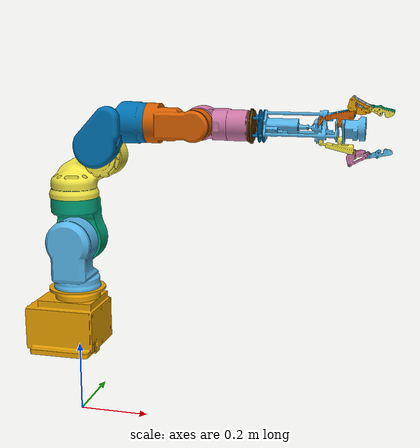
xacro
<?xml version="1.0"?>
<robot name="sia5" xmlns:xacro="http://ros.org/wiki/xacro">

  <!-- File Include -->
  <xacro:include filename="$(find motoman_description)/robots/sia5/sia5_basic.urdf.xacro"/>
  <xacro:include filename="$(find dhand_description)/robots/dhand_adapted.urdf.xacro"/>

  <xacro:add_world>
    <origin xyz="0 0 0.2" rpy="0 0 0"/>
  </xacro:add_world>

  <!-- Joint -->
  <joint name="dhand_adapter_joint" type="fixed">
	<origin xyz="0 0 0" rpy="${M_PI} 0 0"/>
	<parent link="tool0"/>
	<child link="dhand_adapter_link"/>
  </joint>

</robot>

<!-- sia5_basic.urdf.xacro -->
<robot name="sia5" xmlns:xacro="http://ros.org/wiki/xacro">
  <!-- File Include -->
  <xacro:include filename="$(find motoman_description)/urdf/common.xacro" />
  <xacro:include filename="$(find motoman_description)/urdf/materials.xacro"/>
  <xacro:include filename="$(find motoman_description)/urdf/sia5/body.urdf.xacro" />
  <xacro:include filename="$(find motoman_description)/urdf/sia5/body.transmission.xacro"/>
  <xacro:include filename="$(find motoman_description)/urdf/sia5/body.gazebo.xacro"/>

  <!-- Mass -->
  <xacro:property name="sum_mass" value="30.0" />
  <!-- about mass rate -->
  <xacro:property name="table_mass" value="40.0" />
  <xacro:property name="base_rate" value="8.5" />
  <xacro:property name="s_rate" value="7.7" />
  <xacro:property name="l_rate" value="7.0" />
  <xacro:property name="e_rate" value="1.2" />
  <xacro:property name="u_rate" value="1.0" />
  <xacro:property name="r_rate" value="0.9" />
  <xacro:property name="b_rate" value="0.8" />
  <xacro:property name="t_rate" value="0.5" />
  <!-- Hard ware limits -->
  <!-- Range limits -->
  <xacro:property name="s_axis_upper_limit" value="${179.99999*M_PI/180.0*0.95}"/>
  <xacro:property name="s_axis_lower_limit" value="-${s_axis_upper_limit}"/>
  <xacro:property name="l_axis_upper_limit" value="${110.0*M_PI/180.0*0.95}"/>
  <xacro:property name="l_axis_lower_limit" value="-${l_axis_upper_limit}"/>
  <xacro:property name="e_axis_upper_limit" value="${170.0*M_PI/180.0*0.95}"/>
  <xacro:property name="e_axis_lower_limit" value="-${e_axis_upper_limit}"/>
  <xacro:property name="u_axis_upper_limit" value="${115.0*M_PI/180.0*0.95}"/>
  <xacro:property name="u_axis_lower_limit" value="${-90.0*M_PI/180.0*0.95}"/>
  <xacro:property name="r_axis_upper_limit" value="${179.99999*M_PI/180.0*0.95}"/>
  <xacro:property name="r_axis_lower_limit" value="-${r_axis_upper_limit}"/>
  <xacro:property name="b_axis_upper_limit" value="${110.0*M_PI/180.0*0.95}"/>
  <xacro:property name="b_axis_lower_limit" value="-${b_axis_upper_limit}"/>
  <xacro:property name="t_axis_upper_limit" value="${179.99999*M_PI/180.0*0.95}"/>
  <xacro:property name="t_axis_lower_limit" value="-${t_axis_upper_limit}"/>
  <!-- Velocity limits -->
  <xacro:property name="s_axis_velocity_limit" value="${200.0*M_PI/180.0*0.95}"/>
  <xacro:property name="l_axis_velocity_limit" value="${200.0*M_PI/180.0*0.95}"/>
  <xacro:property name="e_axis_velocity_limit" value="${200.0*M_PI/180.0*0.95}"/>
  <xacro:property name="u_axis_velocity_limit" value="${200.0*M_PI/180.0*0.95}"/>
  <xacro:property name="r_axis_velocity_limit" value="${200.0*M_PI/180.0*0.95}"/>
  <xacro:property name="b_axis_velocity_limit" value="${230.0*M_PI/180.0*0.95}"/>
  <xacro:property name="t_axis_velocity_limit" value="${350.0*M_PI/180.0*0.95}"/>

  <!-- Add macro -->
  <xacro:macro name="add_world" params="*origin">
    <link name="world"/>
    <joint name="world" type="fixed">
      <xacro:insert_block name="origin"/>
      <parent link="world"/>
      <child link="base_link"/>
    </joint>
  </xacro:macro>

  <!-- link -->
  <xacro:link_box_v0 name="base_link" mass="${base_rate/sum_rate*sum_mass}"
                     width="0.1665" depth="0.1976" height="0.1465"
                     ox="-0.025918" oy="-0.000376" oz="0.076105" oroll="0" opitch="0" oyaw="0"/>
  <xacro:link_cylinder_plus_box_v0 name="link_s"
                                   ox="0" oy="0" oz="0" oroll="0" opitch="0" oyaw="0"
                                   mass_cyl="${s_rate/sum_rate*sum_mass*0.2}"
                                   radius_cyl="0.066" height_cyl="0.031"
                                   mass_box="${s_rate/sum_rate*sum_mass*0.8}"
                                   width_box="0.0851" depth_box="0.1" height_box="0.1823"/>
  <xacro:link_cylinder_plus_box_v0 name="link_l"
                                   ox="0" oy="-0.006" oz="0.15" oroll="${M_PI}" opitch="0" oyaw="0"
                                   mass_cyl="${l_rate/sum_rate*sum_mass*0.4}"
                                   radius_cyl="0.066" height_cyl="0.073"
                                   mass_box="${l_rate/sum_rate*sum_mass*0.6}"
                                   width_box="0.073" depth_box="0.1089" height_box="0.149"/>
  <xacro:link_cylinder_plus_box_v0 name="link_e"
                                   ox="0" oy="0" oz="0" oroll="0" opitch="0" oyaw="${-M_PI/2}"
                                   mass_cyl="${e_rate/sum_rate*sum_mass*0.56}"
                                   radius_cyl="0.0685" height_cyl="0.0661"
                                   mass_box="${e_rate/sum_rate*sum_mass*0.44}"
                                   width_box="0.1234" depth_box="0.063" height_box="0.1176"/>
  <xacro:link_cylinder_plus_box_v0 name="link_u"
                                   ox="0.008" oy="-0.06" oz="-0.131" oroll="${-M_PI}" opitch="${M_PI/2}" oyaw="0"
                                   mass_cyl="${u_rate/sum_rate*sum_mass*0.48}"
                                   radius_cyl="0.055" height_cyl="0.0698"
                                   mass_box="${u_rate/sum_rate*sum_mass*0.52}"
                                   width_box="0.13174" depth_box="0.068" height_box="0.104"/>
  <xacro:link_cylinder_plus_box_v0 name="link_r"
                                     ox="0" oy="0" oz="0" oroll="0" opitch="0" oyaw="${-M_PI/2}"
                                     mass_cyl="${r_rate/sum_rate*sum_mass*0.25}"
                                     radius_cyl="0.0525" height_cyl="0.038"
                                     mass_box="${r_rate/sum_rate*sum_mass*0.75}"
                                     width_box="0.0645" depth_box="0.084" height_box="0.1425"/>
  <xacro:link_cylinder_plus_box_v0 name="link_b"
                                     ox="0" oy="0.0045" oz="0.1365" oroll="${M_PI/2}" opitch="${-M_PI/2}" oyaw="0"
                                     mass_cyl="${b_rate/sum_rate*sum_mass*0.55}"
                                     radius_cyl="0.04" height_cyl="0.0948"
                                     mass_box="${b_rate/sum_rate*sum_mass*0.45}"
                                     width_box="0.0676" depth_box="0.076" height_box="0.0627"/>
  <xacro:link_v1 name="link_t" mass="${t_rate/sum_rate*sum_mass}"
                   ixx="0.003" ixy="0" ixz="0"
                   iyy="0.003" iyz="0"
                   izz="0.001"/>
  <link name="tool0"/>

  <!-- joint -->
  <xacro:joint_v1 joint_name="joint_s"
                  parent_name="base_link" child_name="link_s"
                  ox="0" oy="0" oz="0.1765"
                  roll="0" pitch="0" yaw="0"
                  ax="0" ay="0" az="1"
                  el="30.0"
                  ll="${s_axis_lower_limit}" ul="${s_axis_upper_limit}"
                  vl="${s_axis_velocity_limit}"
                  skp="1" skv="1"
                  sll="${s_axis_lower_limit}" sul="${s_axis_upper_limit}"/>
  <xacro:joint_v1 joint_name="joint_l"
                  parent_name="link_s" child_name="link_l"
                  ox="0" oy="0.006" oz="0.136"
                  roll="0" pitch="0" yaw="0"
                  ax="0" ay="1" az="0"
                  el="30.0"
                  ll="${l_axis_lower_limit}" ul="${l_axis_upper_limit}"
                  vl="${l_axis_velocity_limit}"
                  skp="1" skv="1"
                  sll="${l_axis_lower_limit}" sul="${l_axis_upper_limit}"/>
  <xacro:joint_v1 joint_name="joint_e"
                  parent_name="link_l" child_name="link_e"
                  ox="0" oy="-0.006" oz="0.15"
                  roll="0" pitch="0" yaw="0"
                  ax="0" ay="0" az="1"
                  el="30.0"
                  ll="${e_axis_lower_limit}" ul="${e_axis_upper_limit}"
                  vl="${e_axis_velocity_limit}"
                  skp="1" skv="1"
                  sll="${e_axis_lower_limit}" sul="${e_axis_upper_limit}"/>
  <xacro:joint_v1 joint_name="joint_u"
                  parent_name="link_e" child_name="link_u"
                  ox="0.085" oy="-0.00826931" oz="0.12275299"
                  roll="${M_PI/2.0}" pitch="0" yaw="0"
                  ax="0" ay="0" az="1"
                  el="30.0"
                  ll="${u_axis_lower_limit}" ul="${u_axis_upper_limit}"
                  vl="${u_axis_velocity_limit}"
                  skp="1" skv="1"
                  sll="${u_axis_lower_limit}" sul="${u_axis_upper_limit}"/>
  <xacro:joint_v1 joint_name="joint_r"
                  parent_name="link_u" child_name="link_r"
                  ox="0.131" oy="0.06" oz="-0.008"
                  roll="0" pitch="${M_PI/2}" yaw="0"
                  ax="0" ay="0" az="-1"
                  el="14.7"
                  ll="${r_axis_lower_limit}" ul="${r_axis_upper_limit}"
                  vl="${r_axis_velocity_limit}"
                  skp="1" skv="1"
                  sll="${r_axis_lower_limit}" sul="${r_axis_upper_limit}"/>
  <xacro:joint_v1 joint_name="joint_b"
                  parent_name="link_r" child_name="link_b"
                  ox="-0.0045" oy="0" oz="0.139"
                  roll="0" pitch="${-M_PI/2}" yaw="0"
                  ax="0" ay="0" az="1"
                  el="14.7"
                  ll="${b_axis_lower_limit}" ul="${b_axis_upper_limit}"
                  vl="${b_axis_velocity_limit}"
                  skp="1" skv="1"
                  sll="${b_axis_lower_limit}" sul="${b_axis_upper_limit}"/>
  <xacro:joint_v1 joint_name="joint_t"
                  parent_name="link_b" child_name="link_t"
                  ox="0.1365" oy="0" oz="-0.0045"
                  roll="${-M_PI/2}" pitch="0" yaw="0"
                  ax="-1" ay="0" az="0"
                  el="7.35"
                  ll="${t_axis_lower_limit}" ul="${t_axis_upper_limit}"
                  vl="${t_axis_velocity_limit}"
                  skp="1" skv="1"
                  sll="${t_axis_lower_limit}" sul="${t_axis_upper_limit}"/>
  <joint name="joint_tool0" type="fixed">
    <origin rpy="0 0 0" xyz="0.0115 0 0"/>
    <parent link="link_t"/>
    <child link="tool0"/>
  </joint>

  <!-- transmission -->
  <xacro:simple_jp_trans_v0 name="transmission_s"
                            joint_name="joint_s" actuator_name="motor_s"
                            reduction="300"/>
  <xacro:simple_jp_trans_v0 name="transmission_l"
                            joint_name="joint_l" actuator_name="motor_l"
                            reduction="300"/>
  <xacro:simple_jp_trans_v0 name="transmission_e"
                            joint_name="joint_e" actuator_name="motor_e"
                            reduction="100"/>
  <xacro:simple_jp_trans_v0 name="transmission_u"
                            joint_name="joint_u" actuator_name="motor_u"
                            reduction="50"/>
  <xacro:simple_jp_trans_v0 name="transmission_r"
                            joint_name="joint_r" actuator_name="motor_r"
                            reduction="30"/>
  <xacro:simple_jp_trans_v0 name="transmission_b"
                            joint_name="joint_b" actuator_name="motor_b"
                            reduction="30"/>
  <xacro:simple_jp_trans_v0 name="transmission_t"
                            joint_name="joint_t" actuator_name="motor_t"
                            reduction="10"/>

  <!-- gazebo -->
  <gazebo>
    <plugin name="gazebo_ros_control" filename="libgazebo_ros_control.so">
      <robotSimType>gazebo_ros_control/DefaultRobotHWSim</robotSimType>
    </plugin>
  </gazebo>
  <xacro:gazebo_link_v1 name="base_link"/>
  <xacro:gazebo_link_v1 name="link_s"/>
  <xacro:gazebo_link_v1 name="link_l"/>
  <xacro:gazebo_link_v1 name="link_e"/>
  <xacro:gazebo_link_v1 name="link_u"/>
  <xacro:gazebo_link_v1 name="link_r"/>
  <xacro:gazebo_link_v1 name="link_b"/>
  <xacro:gazebo_link_v1 name="link_t"/>
</robot>

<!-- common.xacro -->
<robot xmlns:xacro="http://ros.org/wiki/xacro">
    <xacro:property name="M_PI" value="3.14159274" />
</robot>

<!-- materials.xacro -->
<robot xmlns:xacro="http://ros.org/wiki/xacro">

  <material name="black">
    <color rgba="0.0 0.0 0.0 1.0"/>
  </material>

  <material name="blue">
    <color rgba="0.0 0.0 0.8 1.0"/>
  </material>

  <material name="green">
    <color rgba="0.0 0.8 0.0 1.0"/>
  </material>

  <material name="grey">
    <color rgba="0.2 0.2 0.2 1.0"/>
  </material>

  <material name="orange">
    <color rgba="${255/255} ${108/255} ${10/255} 1.0"/>
  </material>

  <material name="brown">
    <color rgba="${222/255} ${207/255} ${195/255} 1.0"/>
  </material>

  <material name="red">
    <color rgba="0.8 0.0 0.0 1.0"/>
  </material>

  <material name="white">
    <color rgba="1.0 1.0 1.0 1.0"/>
  </material>

</robot>

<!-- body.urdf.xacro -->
<robot xmlns:xacro="http://ros.org/wiki/xacro">
  <xacro:property name="sum_rate" value="${base_rate + s_rate
                                      + l_rate + e_rate
                                      + u_rate + r_rate
                                      + b_rate + t_rate}" />

  <xacro:macro name="link_v1" params="name mass
                                      ixx ixy ixz
                                      iyy iyz izz">
    <link name="${name}">
      <visual>
        <geometry>
          <mesh filename="package://motoman_description/meshes/sia5/visual/COLLADA/${name}.dae"/>
        </geometry>
      </visual>
      <collision>
        <geometry>
          <mesh filename="package://motoman_description/meshes/sia5/collision/STL/${name}.stl"/>
        </geometry>
      </collision>
      <inertial>
        <mass value="${mass}"/>
        <inertia ixx="${ixx}" ixy="${ixy}" ixz="${ixz}" iyy="${iyy}" iyz="${iyz}" izz="${izz}" />
      </inertial>
    </link>
  </xacro:macro>

  <xacro:macro name="link_cylinder_v0" params="name mass radius height
                                               ox oy oz oroll opitch oyaw">
    <link name="${name}">
      <visual>
        <geometry>
          <mesh filename="package://motoman_description/meshes/sia5/visual/COLLADA/${name}.dae"/>
        </geometry>
      </visual>
      <collision>
        <geometry>
          <mesh filename="package://motoman_description/meshes/sia5/collision/STL/${name}.stl"/>
        </geometry>
      </collision>
      <inertial>
		<origin xyz="${ox} ${oy} ${oz}" rpy="${oroll} ${opitch} ${oyaw}"/>
        <mass value="${mass}"/>
        <inertia ixx="${mass*((radius*radius)/4+(height*height)/12)}" ixy="0" ixz="0"
				 iyy="${mass*((radius*radius)/4+(height*height)/12)}" iyz="0"
				 izz="${(mass*radius*radius)/2}" />
      </inertial>
    </link>
  </xacro:macro>

  <xacro:macro name="link_box_v0" params="name mass width depth  height
                                          ox oy oz oroll opitch oyaw">
    <link name="${name}">
      <visual>
        <geometry>
          <mesh filename="package://motoman_description/meshes/sia5/visual/COLLADA/${name}.dae"/>
        </geometry>
      </visual>
      <collision>
        <geometry>
          <mesh filename="package://motoman_description/meshes/sia5/collision/STL/${name}.stl"/>
        </geometry>
      </collision>
      <inertial>
		<origin xyz="${ox} ${oy} ${oz}" rpy="${oroll} ${opitch} ${oyaw}"/>
        <mass value="${mass}"/>
        <inertia ixx="${(mass*((width/2)*(width/2)+(height/2)*(height/2)))/3}" ixy="0" ixz="0"
				 iyy="${(mass*((depth/2)*(depth/2)+(height/2)*(height/2)))/3}" iyz="0"
				 izz="${(mass*((depth/2)*(depth/2)+(width/2)*(width/2)))/3}" />
      </inertial>
    </link>
  </xacro:macro>

  <xacro:macro name="link_box_v1" params="name mass width depth height
                                          ox oy oz oroll opitch oyaw">
    <link name="${name}">
      <visual>
        <geometry>
          <mesh filename="package://motoman_description/meshes/sia5/visual/COLLADA/${name}.dae"/>
        </geometry>
      </visual>
      <collision>
		<origin xyz="0 ${oy} -${oz}" rpy="${oroll} ${opitch} ${oyaw}"/>
        <geometry>
		  <box size="${depth} ${width} ${height}"/>
        </geometry>
      </collision>
      <inertial>
		<origin xyz="${ox} ${oy} ${oz}" rpy="${oroll} ${opitch} ${oyaw}"/>
        <mass value="${mass}"/>
        <inertia ixx="${(mass*((width/2)*(width/2)+(height/2)*(height/2)))/3}" ixy="0" ixz="0"
				 iyy="${(mass*((depth/2)*(depth/2)+(height/2)*(height/2)))/3}" iyz="0"
				 izz="${(mass*((depth/2)*(depth/2)+(width/2)*(width/2)))/3}" />
      </inertial>
    </link>
  </xacro:macro>

  <xacro:macro name="link_cylinder_plus_box_v0" params="name
                                                        ox oy oz oroll opitch oyaw
                                                        mass_cyl radius_cyl height_cyl
                                                        mass_box width_box depth_box height_box">
    <link name="${name}">
      <visual>
        <geometry>
          <mesh filename="package://motoman_description/meshes/sia5/visual/COLLADA/${name}.dae"/>
        </geometry>
      </visual>
      <collision>
        <geometry>
          <mesh filename="package://motoman_description/meshes/sia5/collision/STL/${name}.stl"/>
        </geometry>
      </collision>
      <inertial>
		<origin xyz="${ox} ${oy} ${oz}" rpy="${oroll} ${opitch} ${oyaw}"/>
        <mass value="${mass_cyl+mass_box}"/>
        <inertia ixx="${mass_cyl*((radius_cyl*radius_cyl)/4+(height_cyl*height_cyl)/3)+mass_box/3*(width_box*width_box+height_box*height_box)+mass_box*(radius_cyl*radius_cyl-radius_cyl*width_box+height_cyl*height_cyl+height_cyl*height_box)}" ixy="0" ixz="0"
                 iyy="${mass_cyl*((radius_cyl*radius_cyl)/4+(height_cyl*height_cyl)/12)+mass_box/3*(depth_box*depth_box+height_box*height_box)+mass_box*(radius_cyl*radius_cyl-radius_cyl*depth_box+height_cyl*height_cyl+height_cyl*height_box)}" iyz="0"
                 izz="${(mass_cyl*radius_cyl*radius_cyl)/2+mass_box/3*(depth_box*depth_box+width_box*width_box)+mass_box*(2*radius_cyl*radius_cyl-radius_cyl*depth_box-radius_cyl*width_box)}" />
      </inertial>
    </link>
  </xacro:macro>

  <xacro:macro name="joint_v1" params="joint_name
                                       parent_name child_name
                                       ox oy oz roll pitch yaw ax ay az
                                       el ll ul vl
                                       skp skv sll sul">
    <joint name="${joint_name}" type="revolute">
      <origin xyz="${ox} ${oy} ${oz}" rpy="${roll} ${pitch} ${yaw}"/>
      <parent link="${parent_name}"/>
      <child link="${child_name}"/>
      <axis xyz="${ax} ${ay} ${az}"/>
      <dynamics damping="0.7" friction="0.7"/>
      <limit effort="${el}" lower="${ll}" upper="${ul}" velocity="${vl}"/>
    </joint>
  </xacro:macro>
</robot>

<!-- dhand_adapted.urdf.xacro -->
<robot name="dhand" xmlns:xacro="http://ros.org/wiki/xacro">

  <xacro:include filename="$(find dhand_description)/robots/dhand.urdf.xacro"/>
  <xacro:include filename="$(find dhand_description)/urdf/adapter/adapter.urdf.xacro"/>

  <joint name="dhand_base_joint" type="fixed">
	<origin xyz="0.028 0 0" rpy="0 0 0"/>
	<parent link="dhand_adapter_link"/>
	<child link="dhand_base_link"/>
  </joint>
  <xacro:dhand_adapter_v0/>

</robot>

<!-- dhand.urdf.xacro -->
<robot name="dhand" xmlns:xacro="http://ros.org/wiki/xacro">

  <xacro:include filename="$(find dhand_description)/urdf/common.xacro"/>
  <xacro:include filename="$(find dhand_description)/urdf/base/base.urdf.xacro"/>
  <xacro:include filename="$(find dhand_description)/urdf/finger/finger.urdf.xacro"/>
  <xacro:include filename="$(find dhand_description)/urdf/adapter/adapter.urdf.xacro"/>

  <!-- =============== Inertial Info =============== -->
  <xacro:property name="finger_base_mass">
	<mass value="0.04234931"/>
  </xacro:property>
  <xacro:property name="finger_middle_mass">
	<mass value="0.02332939"/>
  </xacro:property>
  <xacro:property name="finger_top_mass">
	<mass value="0.01452790"/>
  </xacro:property>
  <xacro:property name="finger_base_inertia">
	<inertia ixx="1e-3" ixy="0.00000000" ixz="-0.00001443"
			 iyy="1e-3" iyz="0.00000000"
			 izz="1e-3" />
  </xacro:property>
  <xacro:property name="finger_middle_inertia">
	<inertia ixx="1e-3" ixy="0.00000220" ixz="0.00000000"
			 iyy="1e-3" iyz="0.00000004"
			 izz="1e-3" />
  </xacro:property>
  <xacro:property name="finger_top_inertia">
	<inertia ixx="1e-3" ixy="0.00000139" ixz="0.00000000"
			 iyy="1e-3" iyz="0.00000000"
			 izz="1e-3" />
  </xacro:property>

  <!-- =============== Link & Joint =============== -->
  <!-- ==== Base ==== -->
  <xacro:dhand_base_v0 />

  <!-- ==== finger base ==== -->
  <xacro:dhand_fixed_finger_base/>

  <xacro:dhand_finger_v0 parent="dhand_base_link" prefix="base" side="right">
  	<origin xyz="0.1865 -0.025964675 -0.01505875" rpy="${180*M_PI/180} ${-90*M_PI/180} 0"/>
  	<axis xyz="0 0 1"/>
	<limit effort="10.0" lower="${-120*M_PI/180}" upper="0.0" velocity="10.0"/>
  	<insert_block name="finger_base_mass"/>
  	<insert_block name="finger_base_inertia"/>
  </xacro:dhand_finger_v0>

  <xacro:dhand_finger_v0 parent="dhand_base_link" prefix="base" side="left">
  	<origin xyz="0.1865 0.02601464 -0.01494117" rpy="${-180*M_PI/180} ${-90*M_PI/180} 0"/>
  	<axis xyz="0 0 1"/>
	<limit effort="10.0" lower="0.0" upper="${120*M_PI/180}" velocity="10.0"/>
  	<insert_block name="finger_base_mass"/>
  	<insert_block name="finger_base_inertia"/>
  </xacro:dhand_finger_v0>

  <!--==== finger middle ====-->
  <xacro:dhand_finger_v0 parent="dhand_finger_base_middle_link" prefix="middle" side="middle">
  	<origin xyz="-0.0415 0 0.033" rpy="${90*M_PI/180} 0 0"/>
  	<axis xyz="0 0 -1"/>
	<limit effort="10.0" lower="0.0" upper="0.02" velocity="10.0"/>
  	<insert_block name="finger_middle_mass"/>
  	<insert_block name="finger_middle_inertia"/>
  </xacro:dhand_finger_v0>

  <xacro:dhand_finger_v0 parent="dhand_finger_base_right_link" prefix="middle" side="right">
  	<origin xyz="-0.0415 0 0.033" rpy="${90*M_PI/180} 0 0"/>
  	<axis xyz="0 0 -1"/>
	<limit effort="10.0" lower="0.0" upper="0.02" velocity="10.0"/>
  	<insert_block name="finger_middle_mass"/>
  	<insert_block name="finger_middle_inertia"/>
  </xacro:dhand_finger_v0>

  <xacro:dhand_finger_v0 parent="dhand_finger_base_left_link" prefix="middle" side="left">
  	<origin xyz="-0.0415 0 0.033" rpy="${90*M_PI/180} 0 0"/>
  	<axis xyz="0 0 -1"/>
	<limit effort="10.0" lower="0.0" upper="0.02" velocity="10.0"/>
  	<insert_block name="finger_middle_mass"/>
  	<insert_block name="finger_middle_inertia"/>
  </xacro:dhand_finger_v0>

  <!-- ==== finger top ==== -->
  <xacro:dhand_finger_v0 parent="dhand_finger_middle_middle_link" prefix="top" side="middle">
  	<origin xyz="0.00976095 0.0434937 0.0" rpy="0 0 0"/>
  	<axis xyz="0 0 -1"/>
	<limit effort="10.0" lower="0.0" upper="1.40" velocity="10.0"/>
  	<insert_block name="finger_top_mass"/>
  	<insert_block name="finger_top_inertia"/>
  </xacro:dhand_finger_v0>

  <xacro:dhand_finger_v0 parent="dhand_finger_middle_right_link" prefix="top" side="right">
  	<origin xyz="0.00976095 0.0434937 0.0" rpy="0 0 0"/>
  	<axis xyz="0 0 -1"/>
	<limit effort="10.0" lower="0.0" upper="1.40" velocity="10.0"/>
  	<insert_block name="finger_top_mass"/>
  	<insert_block name="finger_top_inertia"/>
  </xacro:dhand_finger_v0>

  <xacro:dhand_finger_v0 parent="dhand_finger_middle_left_link" prefix="top" side="left">
  	<origin xyz="0.00976095 0.0434937 0.0" rpy="0 0 0"/>
  	<axis xyz="0 0 -1"/>
	<limit effort="10.0" lower="0.0" upper="1.40" velocity="10.0"/>
  	<insert_block name="finger_top_mass"/>
  	<insert_block name="finger_top_inertia"/>
  </xacro:dhand_finger_v0>

  <!-- =============== Gazebo =============== -->
  <!-- ==== Adapter ==== -->
  <xacro:dhand_adapter_gazebo_v0/>
  <!-- ==== Base ==== -->
  <xacro:dhand_base_gazebo_v0/>
  <!-- ==== Fingers ==== -->
  <xacro:dhand_finger_gazebo_v0 prefix="base" side="middle"/>
  <xacro:dhand_finger_gazebo_v0 prefix="base" side="right"/>
  <xacro:dhand_finger_gazebo_v0 prefix="base" side="left"/>
  <xacro:dhand_finger_gazebo_v0 prefix="middle" side="middle"/>
  <xacro:dhand_finger_gazebo_v0 prefix="middle" side="right"/>
  <xacro:dhand_finger_gazebo_v0 prefix="middle" side="left"/>
  <xacro:dhand_finger_gazebo_v0 prefix="top" side="middle"/>
  <xacro:dhand_finger_gazebo_v0 prefix="top" side="right"/>
  <xacro:dhand_finger_gazebo_v0 prefix="top" side="left"/>

  <!-- ====== Transmissions ====== -->
  <xacro:dhand_finger_trans_v0 prefix="base" side="right"/>
  <xacro:dhand_finger_trans_v0 prefix="base" side="left"/>
  <xacro:dhand_finger_trans_v0 prefix="middle" side="middle"/>
  <xacro:dhand_finger_trans_v0 prefix="middle" side="right"/>
  <xacro:dhand_finger_trans_v0 prefix="middle" side="left"/>
  <xacro:dhand_finger_trans_v0 prefix="top" side="middle"/>
  <xacro:dhand_finger_trans_v0 prefix="top" side="right"/>
  <xacro:dhand_finger_trans_v0 prefix="top" side="left"/>

</robot>

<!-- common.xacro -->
<robot xmlns:xacro="http://ros.org/wiki/xacro">
  <property name="M_PI" value="3.14159274"/>
</robot>

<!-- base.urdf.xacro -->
<robot xmlns:xacro="http://ros.org/wiki/xacro">

  <xacro:include filename="$(find dhand_description)/urdf/base/base.gazebo.xacro"/>

  <xacro:macro name="dhand_base_v0">
    <link name="dhand_base_link">
      <visual>
        <geometry>
          <mesh filename="package://dhand_description/meshes/visual/base/base.dae"/>
        </geometry>
      </visual>
      <collision>
        <geometry>
          <mesh filename="package://dhand_description/meshes/collision/base.STL"/>
        </geometry>
      </collision>
      <inertial>
        <mass value="1.22813391"/>
        <inertia ixx="0.00052834" ixy="0.00000936" ixz="0.00000419"
				 iyy="0.01395061" iyz="0.00000326"
				 izz="0.01395381" />
      </inertial>
    </link>

	<joint name="dhand_palm_joint" type="fixed">
	  <origin xyz="0.255 0 0"/>
	  <parent link="dhand_base_link"/>
	  <child link="dhand_palm_link"/>
	</joint>

	<link name="dhand_palm_link"/>
  </xacro:macro>

</robot>

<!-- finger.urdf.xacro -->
<robot xmlns:xacro="http://ros.org/wiki/xacro">

  <xacro:include filename="$(find dhand_description)/urdf/common.xacro"/>
  <xacro:include filename="$(find dhand_description)/urdf/finger/finger.gazebo.xacro"/>
  <xacro:include filename="$(find dhand_description)/urdf/finger/finger.transmission.xacro"/>

  <xacro:macro name="dhand_finger_v0" params="parent prefix side *joint_origin *joint_axis *joint_limit *mass *inertia">
	<joint name="dhand_finger_${prefix}_${side}_joint" type="revolute">
	  <insert_block name="joint_origin"/>
	  <parent link="${parent}"/>
	  <child link="dhand_finger_${prefix}_${side}_link"/>
	  <insert_block name="joint_axis"/>
	  <dynamics damping="0.7" friction="0.7"/>
	  <insert_block name="joint_limit"/>
	</joint>

	<link name="dhand_finger_${prefix}_${side}_link">
	  <visual>
		<geometry>
		  <mesh filename="package://dhand_description/meshes/visual/finger/${prefix}/finger_${prefix}.dae"/>
		</geometry>
	  </visual>
	  <collision>
		<geometry>
		  <mesh filename="package://dhand_description/meshes/collision/finger/finger_${prefix}.STL"/>
		</geometry>
	  </collision>
	  <inertial>
		<insert_block name="mass"/>
	  	<insert_block name="inertia"/>
	  </inertial>
	</link>
  </xacro:macro>

  <xacro:macro name="dhand_fixed_finger_base">
	<joint name="dhand_finger_base_middle_joint" type="fixed">
	  <origin xyz="0.1865 0 0.03" rpy="0 ${90*M_PI/180} 0"/>
	  <parent link="dhand_base_link"/>
	  <child link="dhand_finger_base_middle_link"/>
	</joint>

	<link name="dhand_finger_base_middle_link">
	  <visual>
		<geometry>
		  <mesh filename="package://dhand_description/meshes/visual/finger/base/finger_base.dae"/>
		</geometry>
	  </visual>
	  <collision>
		<geometry>
		  <mesh filename="package://dhand_description/meshes/collision/finger/finger_base.STL"/>
		</geometry>
	  </collision>
	  <inertial>
		<mass value="0.04234931"/>
		<inertia ixx="1e-3" ixy="0.00000000" ixz="-0.00001443"
				 iyy="1e-3" iyz="0.00000000"
				 izz="1e-3" />
	  </inertial>
	</link>
  </xacro:macro>
</robot>

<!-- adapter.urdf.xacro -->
<robot xmlns:xacro="http://ros.org/wiki/xacro">

  <xacro:include filename="$(find dhand_description)/urdf/adapter/adapter.gazebo.xacro"/>

  <xacro:macro name="dhand_adapter_v0">
    <link name="dhand_adapter_link">
      <visual>
        <geometry>
          <mesh filename="package://dhand_description/meshes/visual/adapter/adapter.dae"/>
        </geometry>
      </visual>
      <collision>
        <geometry>
          <mesh filename="package://dhand_description/meshes/collision/adapter.STL"/>
        </geometry>
      </collision>
      <inertial>
        <mass value="0.09444833"/>
        <inertia ixx="1e-3" ixy="0.00000000" ixz="0.00000000"
				 iyy="1e-3" iyz="0.00000000"
				 izz="1e-3" />
      </inertial>
    </link>
  </xacro:macro>
</robot>
